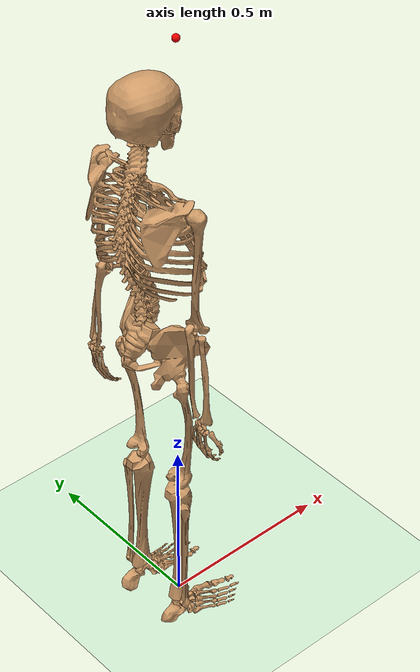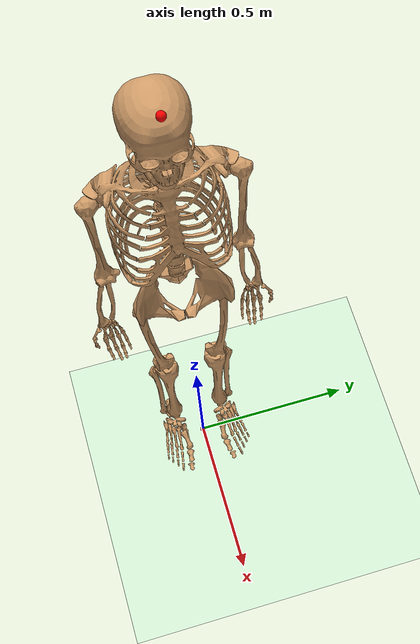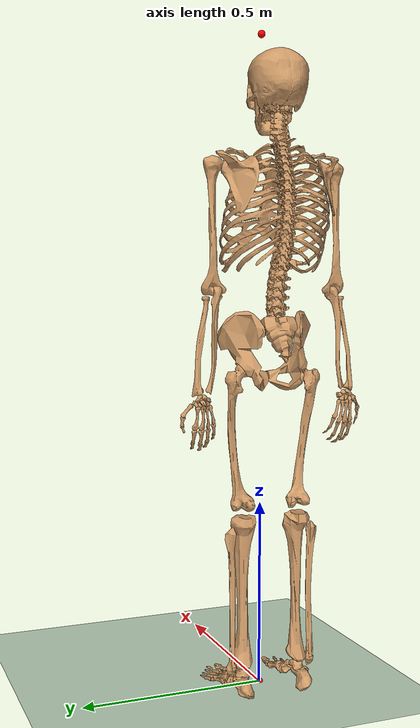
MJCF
<?xml version="1.0" encoding="utf-8"?>
<mujoco model="GZ_DW_sub01">
  <compiler inertiafromgeom="auto" angle="radian"  meshdir="meshes/" balanceinertia="true" boundmass="0.001" boundinertia="0.001" convexhull="false">
    <lengthrange inttotal="50" useexisting="true"></lengthrange>
  </compiler>
  <option timestep="0.001" integrator="RK4" iterations="50"/>
  <size njmax="1000" nconmax="400" nuser_jnt="1"/>
  <visual>
    <global offwidth="1920" offheight="1080"/>
    <scale connect="0.025000000000000001" jointwidth="0.025000000000000001" framewidth="0.025000000000000001"/>
  </visual>
  <default>
    <default class="/">
      <joint limited="true" stiffness="1" armature="0.01" damping="1"/>
      <geom condim="3" group="0" rgba="0.80000000000000004 0.59999999999999998 0.40000000000000002 1" margin="0.001"/>
      <site size="0.001"/>
      <tendon limited="false" width="0.001" rgba="0.94999999999999996 0.29999999999999999 0.29999999999999999 1"/>
      <motor ctrllimited="true" ctrlrange="-1 1"/>
    </default>
  </default>
  <asset>
    <mesh name="sacrum" class="/" file="sacrum.stl" scale="0.97641393442622948 0.97641393442622948 0.97641393442622948"/>
    <mesh name="pelvis" class="/" file="pelvis.stl" scale="0.97641393442622948 0.97641393442622948 0.97641393442622948"/>
    <mesh name="l_pelvis" class="/" file="l_pelvis.stl" scale="0.97641393442622948 0.97641393442622948 0.97641393442622948"/>
    <mesh name="femur_r" class="/" file="femur_r.stl" scale="0.86917336065573769 0.86917336065573769 0.86917336065573769"/>
    <mesh name="tibia_r" class="/" file="tibia_r.stl" scale="1.0678633879781418 1.0678633879781418 1.0678633879781418"/>
    <mesh name="fibula_r" class="/" file="fibula_r.stl" scale="1.0678633879781418 1.0678633879781418 1.0678633879781418"/>
    <mesh name="talus_rv" class="/" file="talus_rv.stl" scale="1.0678633879781418 1.0678633879781418 1.0678633879781418"/>
    <mesh name="foot" class="/" file="foot.stl" scale="1.0189398907103824 1.0189398907103824 1.0189398907103824"/>
    <mesh name="bofoot" class="/" file="bofoot.stl" scale="1.0189398907103824 1.0189398907103824 1.0189398907103824"/>
    <mesh name="femur_l" class="/" file="femur_l.stl" scale="0.86917336065573769 0.86917336065573769 0.86917336065573769"/>
    <mesh name="tibia_l" class="/" file="tibia_l.stl" scale="1.0678633879781418 1.0678633879781418 1.0678633879781418"/>
    <mesh name="fibula_l" class="/" file="fibula_l.stl" scale="1.0678633879781418 1.0678633879781418 1.0678633879781418"/>
    <mesh name="talus_lv" class="/" file="talus_lv.stl" scale="1.0678633879781418 1.0678633879781418 1.0678633879781418"/>
    <mesh name="l_foot" class="/" file="l_foot.stl" scale="1.0189398907103824 1.0189398907103824 1.0189398907103824"/>
    <mesh name="l_bofoot" class="/" file="l_bofoot.stl" scale="1.0189398907103824 1.0189398907103824 1.0189398907103824"/>
    <mesh name="hat_spine" class="/" file="hat_spine.stl" scale="1.0302622950819673 1.0302622950819673 1.0302622950819673"/>
    <mesh name="hat_jaw" class="/" file="hat_jaw.stl" scale="1.0773600000000001 1.0773600000000001 1.0773600000000001"/>
    <mesh name="hat_skull" class="/" file="hat_skull.stl" scale="1.0773600000000001 1.0773600000000001 1.0773600000000001"/>
    <mesh name="hat_ribs_scap" class="/" file="hat_ribs_scap.stl" scale="1.0302622950819673 1.0302622950819673 1.0302622950819673"/>
    <mesh name="humerus_rv" class="/" file="humerus_rv.stl" scale="1.1234139344262295 1.1234139344262295 1.1234139344262295"/>
    <mesh name="ulna_rv" class="/" file="ulna_rv.stl" scale="1.0598210382513662 1.0598210382513662 1.0598210382513662"/>
    <mesh name="radius_rv" class="/" file="radius_rv.stl" scale="1.0598210382513662 1.0598210382513662 1.0598210382513662"/>
    <mesh name="pisiform_rvs" class="/" file="pisiform_rvs.stl" scale="0.86609795081967211 0.86609795081967211 0.86609795081967211"/>
    <mesh name="lunate_rvs" class="/" file="lunate_rvs.stl" scale="0.86609795081967211 0.86609795081967211 0.86609795081967211"/>
    <mesh name="scaphoid_rvs" class="/" file="scaphoid_rvs.stl" scale="0.86609795081967211 0.86609795081967211 0.86609795081967211"/>
    <mesh name="triquetrum_rvs" class="/" file="triquetrum_rvs.stl" scale="0.86609795081967211 0.86609795081967211 0.86609795081967211"/>
    <mesh name="hamate_rvs" class="/" file="hamate_rvs.stl" scale="0.86609795081967211 0.86609795081967211 0.86609795081967211"/>
    <mesh name="capitate_rvs" class="/" file="capitate_rvs.stl" scale="0.86609795081967211 0.86609795081967211 0.86609795081967211"/>
    <mesh name="trapezoid_rvs" class="/" file="trapezoid_rvs.stl" scale="0.86609795081967211 0.86609795081967211 0.86609795081967211"/>
    <mesh name="trapezium_rvs" class="/" file="trapezium_rvs.stl" scale="0.86609795081967211 0.86609795081967211 0.86609795081967211"/>
    <mesh name="metacarpal2_rvs" class="/" file="metacarpal2_rvs.stl" scale="0.86609795081967211 0.86609795081967211 0.86609795081967211"/>
    <mesh name="index_proximal_rvs" class="/" file="index_proximal_rvs.stl" scale="0.86609795081967211 0.86609795081967211 0.86609795081967211"/>
    <mesh name="index_medial_rvs" class="/" file="index_medial_rvs.stl" scale="0.86609795081967211 0.86609795081967211 0.86609795081967211"/>
    <mesh name="index_distal_rvs" class="/" file="index_distal_rvs.stl" scale="0.86609795081967211 0.86609795081967211 0.86609795081967211"/>
    <mesh name="metacarpal3_rvs" class="/" file="metacarpal3_rvs.stl" scale="0.86609795081967211 0.86609795081967211 0.86609795081967211"/>
    <mesh name="middle_proximal_rvs" class="/" file="middle_proximal_rvs.stl" scale="0.86609795081967211 0.86609795081967211 0.86609795081967211"/>
    <mesh name="middle_medial_rvs" class="/" file="middle_medial_rvs.stl" scale="0.86609795081967211 0.86609795081967211 0.86609795081967211"/>
    <mesh name="middle_distal_rvs" class="/" file="middle_distal_rvs.stl" scale="0.86609795081967211 0.86609795081967211 0.86609795081967211"/>
    <mesh name="metacarpal4_rvs" class="/" file="metacarpal4_rvs.stl" scale="0.86609795081967211 0.86609795081967211 0.86609795081967211"/>
    <mesh name="ring_proximal_rvs" class="/" file="ring_proximal_rvs.stl" scale="0.86609795081967211 0.86609795081967211 0.86609795081967211"/>
    <mesh name="ring_medial_rvs" class="/" file="ring_medial_rvs.stl" scale="0.86609795081967211 0.86609795081967211 0.86609795081967211"/>
    <mesh name="ring_distal_rvs" class="/" file="ring_distal_rvs.stl" scale="0.86609795081967211 0.86609795081967211 0.86609795081967211"/>
    <mesh name="metacarpal5_rvs" class="/" file="metacarpal5_rvs.stl" scale="0.86609795081967211 0.86609795081967211 0.86609795081967211"/>
    <mesh name="little_proximal_rvs" class="/" file="little_proximal_rvs.stl" scale="0.86609795081967211 0.86609795081967211 0.86609795081967211"/>
    <mesh name="little_medial_rvs" class="/" file="little_medial_rvs.stl" scale="0.86609795081967211 0.86609795081967211 0.86609795081967211"/>
    <mesh name="little_distal_rvs" class="/" file="little_distal_rvs.stl" scale="0.86609795081967211 0.86609795081967211 0.86609795081967211"/>
    <mesh name="metacarpal1_rvs" class="/" file="metacarpal1_rvs.stl" scale="0.86609795081967211 0.86609795081967211 0.86609795081967211"/>
    <mesh name="thumb_proximal_rvs" class="/" file="thumb_proximal_rvs.stl" scale="0.86609795081967211 0.86609795081967211 0.86609795081967211"/>
    <mesh name="thumb_distal_rvs" class="/" file="thumb_distal_rvs.stl" scale="0.86609795081967211 0.86609795081967211 0.86609795081967211"/>
    <mesh name="humerus_lv" class="/" file="humerus_lv.stl" scale="1.1234139344262295 1.1234139344262295 1.1234139344262295"/>
    <mesh name="ulna_lv" class="/" file="ulna_lv.stl" scale="1.0598210382513662 1.0598210382513662 1.0598210382513662"/>
    <mesh name="radius_lv" class="/" file="radius_lv.stl" scale="1.0598210382513662 1.0598210382513662 1.0598210382513662"/>
    <mesh name="pisiform_lvs" class="/" file="pisiform_lvs.stl" scale="0.86609795081967211 0.86609795081967211 0.86609795081967211"/>
    <mesh name="lunate_lvs" class="/" file="lunate_lvs.stl" scale="0.86609795081967211 0.86609795081967211 0.86609795081967211"/>
    <mesh name="scaphoid_lvs" class="/" file="scaphoid_lvs.stl" scale="0.86609795081967211 0.86609795081967211 0.86609795081967211"/>
    <mesh name="triquetrum_lvs" class="/" file="triquetrum_lvs.stl" scale="0.86609795081967211 0.86609795081967211 0.86609795081967211"/>
    <mesh name="hamate_lvs" class="/" file="hamate_lvs.stl" scale="0.86609795081967211 0.86609795081967211 0.86609795081967211"/>
    <mesh name="capitate_lvs" class="/" file="capitate_lvs.stl" scale="0.86609795081967211 0.86609795081967211 0.86609795081967211"/>
    <mesh name="trapezoid_lvs" class="/" file="trapezoid_lvs.stl" scale="0.86609795081967211 0.86609795081967211 0.86609795081967211"/>
    <mesh name="trapezium_lvs" class="/" file="trapezium_lvs.stl" scale="0.86609795081967211 0.86609795081967211 0.86609795081967211"/>
    <mesh name="metacarpal2_lvs" class="/" file="metacarpal2_lvs.stl" scale="0.86609795081967211 0.86609795081967211 0.86609795081967211"/>
    <mesh name="index_proximal_lvs" class="/" file="index_proximal_lvs.stl" scale="0.86609795081967211 0.86609795081967211 0.86609795081967211"/>
    <mesh name="index_medial_lvs" class="/" file="index_medial_lvs.stl" scale="0.86609795081967211 0.86609795081967211 0.86609795081967211"/>
    <mesh name="index_distal_lvs" class="/" file="index_distal_lvs.stl" scale="0.86609795081967211 0.86609795081967211 0.86609795081967211"/>
    <mesh name="metacarpal3_lvs" class="/" file="metacarpal3_lvs.stl" scale="0.86609795081967211 0.86609795081967211 0.86609795081967211"/>
    <mesh name="middle_proximal_lvs" class="/" file="middle_proximal_lvs.stl" scale="0.86609795081967211 0.86609795081967211 0.86609795081967211"/>
    <mesh name="middle_medial_lvs" class="/" file="middle_medial_lvs.stl" scale="0.86609795081967211 0.86609795081967211 0.86609795081967211"/>
    <mesh name="middle_distal_lvs" class="/" file="middle_distal_lvs.stl" scale="0.86609795081967211 0.86609795081967211 0.86609795081967211"/>
    <mesh name="metacarpal4_lvs" class="/" file="metacarpal4_lvs.stl" scale="0.86609795081967211 0.86609795081967211 0.86609795081967211"/>
    <mesh name="ring_proximal_lvs" class="/" file="ring_proximal_lvs.stl" scale="0.86609795081967211 0.86609795081967211 0.86609795081967211"/>
    <mesh name="ring_medial_lvs" class="/" file="ring_medial_lvs.stl" scale="0.86609795081967211 0.86609795081967211 0.86609795081967211"/>
    <mesh name="ring_distal_lvs" class="/" file="ring_distal_lvs.stl" scale="0.86609795081967211 0.86609795081967211 0.86609795081967211"/>
    <mesh name="metacarpal5_lvs" class="/" file="metacarpal5_lvs.stl" scale="0.86609795081967211 0.86609795081967211 0.86609795081967211"/>
    <mesh name="little_proximal_lvs" class="/" file="little_proximal_lvs.stl" scale="0.86609795081967211 0.86609795081967211 0.86609795081967211"/>
    <mesh name="little_medial_lvs" class="/" file="little_medial_lvs.stl" scale="0.86609795081967211 0.86609795081967211 0.86609795081967211"/>
    <mesh name="little_distal_lvs" class="/" file="little_distal_lvs.stl" scale="0.86609795081967211 0.86609795081967211 0.86609795081967211"/>
    <mesh name="metacarpal1_lvs" class="/" file="metacarpal1_lvs.stl" scale="0.86609795081967211 0.86609795081967211 0.86609795081967211"/>
    <mesh name="thumb_proximal_lvs" class="/" file="thumb_proximal_lvs.stl" scale="0.86609795081967211 0.86609795081967211 0.86609795081967211"/>
    <mesh name="thumb_distal_lvs" class="/" file="thumb_distal_lvs.stl" scale="0.86609795081967211 0.86609795081967211 0.86609795081967211"/>
    <texture name="//unnamed_texture_0" type="skybox" builtin="gradient" rgb1="0.40000000000000002 0.5 0.59999999999999998" rgb2="0 0 0" width="100" height="100"/>
    <texture name="texgeom" type="cube" builtin="flat" rgb1="0.80000000000000004 0.59999999999999998 0.40000000000000002" rgb2="0.80000000000000004 0.59999999999999998 0.40000000000000002" mark="cross" markrgb="1 1 1" random="0.01" width="127" height="1278"/>
    <texture name="texplane" type="2d" builtin="checker" rgb1="0.20000000000000001 0.29999999999999999 0.40000000000000002" rgb2="0.10000000000000001 0.14999999999999999 0.20000000000000001" width="100" height="100"/>
    <material name="MatPlane" class="/" texture="texplane" texrepeat="1 1" texuniform="true" reflectance="0.5"/>
    <material name="geom" class="/" texture="texgeom" texuniform="true"/>
  </asset>
  <worldbody>
    <geom name="ref" type="sphere" size="0.01" pos="0 0 0" rgba="1 0 0 1"/>
    <geom name="tall" type="sphere" size="0.01" pos="0 0 1.75" rgba="1 0 0 1"/>
    <geom name="floor" class="/" type="plane" condim="3" group="2" size="500 500 0.125" material="MatPlane" rgba="0.80000000000000004 0.90000000000000002 0.80000000000000004 1" pos="0 0 0"/>
    <light name="//unnamed_light_0" class="/" directional="true" castshadow="false" pos="0 0 1.3" dir="-0 0 -1.3" cutoff="100" exponent="1" diffuse="1 1 1" specular="0.10000000000000001 0.10000000000000001 0.10000000000000001"/>
    <body name="pelvis" pos="0 6.4411092896174867e-17 0.93237704918032782" quat="0.70710678118654746 0.70710678118654746 0 0">
      <light name="spotlight" class="/" mode="trackcom" pos="0 10 2" dir="0 -1 0"/>
      <geom name="sacrum" class="/" type="mesh" mesh="sacrum"/>
      <geom name="pelvis" class="/" type="mesh" mesh="pelvis"/>
      <geom name="l_pelvis" class="/" type="mesh" mesh="l_pelvis"/>
      <inertial pos="-0.072188199999999994 0 0" mass="11.869610789760127" fullinertia="0.098778295932740554 0.083692487708162414 0.055634995655872904 0 0 0"/>
      <camera name="track_human" class="/" mode="trackcom" pos="0 0 4" xyaxes="1 0 0 0 1 0"/>
      <body name="pelvis_body" pos="-0.069032431693989066 -0.032270478142076495 0">
        <inertial pos="-0.0050000000000000001 0 0" mass="0" fullinertia="1.5774042244832163 0.80822313528878542 1.5312927050690319 0 0 0"/>
      </body>
      <joint name="pelvis_tx" class="/" type="slide" pos="0 0 0" axis="1 0 0" limited="false" stiffness="0" range="-500 500" ref="0" armature="0" damping="0"/>
      <joint name="pelvis_tz" class="/" type="slide" pos="0 0 0" axis="0 0 1" limited="false" stiffness="0" range="-300 300" ref="0" armature="0" damping="0"/>
      <joint name="pelvis_ty" class="/" type="slide" pos="0 0 0" axis="0 1 0" limited="false" stiffness="0" range="-100 200" ref="0" armature="0" damping="0"/>
      <joint name="pelvis_tilt" class="/" type="hinge" pos="0 0 0" axis="0 0 1" limited="false" stiffness="0" range="-1.5708 1.5708" ref="0" armature="0" damping="0"/>
      <joint name="pelvis_list" class="/" type="hinge" pos="0 0 0" axis="1 0 0" limited="false" stiffness="0" range="-1.5708 1.5708" ref="0" armature="0" damping="0"/>
      <joint name="pelvis_rotation" class="/" type="hinge" pos="0 0 0" axis="0 1 0" limited="false" stiffness="0" range="-1.5708 1.5708" ref="0" armature="0" damping="0"/>
      <body name="femur_r" pos="-0.069032431693989066 -0.064540956284152989 0.08153049180327869" quat="1 0 0 0">
        <body name="hip_r" pos="-0.009562841530054645 -0.009562841530054645 0.023907103825136611">
          <inertial pos="-0.0050000000000000001 0 0" mass="0" fullinertia="1.5774042244832163 0.80822313528878542 1.5312927050690319 0 0 0"/>
        </body>
        <geom name="femur_r" class="/" type="mesh" mesh="femur_r"/>
        <inertial pos="0 -0.15451400000000001 0" mass="9.3745434151205824" fullinertia="0.10195236149907592 0.026725248205739207 0.10751037502541276 0 0 0"/>
        <joint name="hip_flexion_r" class="/" type="hinge" pos="0 0 0" axis="0 0 1" limited="true" stiffness="10" range="-0.78700000000000003 0.78700000000000003" ref="0" damping="5"/>
        <joint name="hip_adduction_r" class="/" type="hinge" pos="0 0 0" axis="1 0 0" limited="true" stiffness="10" range="-0.52400000000000002 0.52400000000000002" ref="0" damping="5"/>
        <joint name="hip_rotation_r" class="/" type="hinge" pos="0 0 0" axis="0 1 0" limited="true" stiffness="20" range="-2.0943999999999998 2.0943999999999998" ref="0" damping="5"/>
        <body name="tibia_r" pos="-0.0016008005464480874 -0.34956489071038249 0" quat="1 0 0 0">
          <geom name="tibia_r" class="/" type="mesh" mesh="tibia_r"/>
          <geom name="fibula_r" class="/" type="mesh" mesh="fibula_r"/>
          <inertial pos="0 -0.208485 0" mass="3.7366546661319258" fullinertia="0.057924897228723682 0.0058614490763077677 0.058729409690233741 0 0 0"/>
          <joint name="knee_angle_r" class="/" type="hinge" pos="0 0 0" axis="0 0 1" limited="true" range="-2.0943999999999998 0.17453299999999999" ref="0"/>
          <body name="talus_r" pos="0 -0.45918183060109291 0" quat="1 0 0 0">
            <geom name="talus_rv" class="/" type="mesh" mesh="talus_rv"/>
            <inertial pos="0 0 0" mass="0.10078636995635692" fullinertia="0.0011493012315452833 0.0011493012315452833 0.0011493012315452833 0 0 0"/>
            <joint name="ankle_angle_r" class="/" type="hinge" pos="0 0 0" axis="-0.105014 -0.17402200000000001 0.97912600000000005" limited="true" stiffness="10" range="-1.5708 1.5708" ref="0" damping="1"/>
            <body name="calcn_r" pos="-0.052079808743169392 -0.044796939890710381 0.0084574918032786894" quat="1 0 0 0">
              <geom name="r_foot" class="/" type="mesh" mesh="foot"/>
              <inertial pos="0.10655199999999999 0.031965599999999997 0" mass="1.2598296244544616" fullinertia="0.0014649644112741575 0.0040809654338564974 0.0042902426366920494 0 0 0"/>
              <joint name="subtalar_angle_r" class="/" type="hinge" pos="0 0 0" axis="0.78717999999999999 0.60474700000000003 -0.120949" limited="true" range="-1.5708 1.5708" ref="0" armature="0.01"/>
              <body name="toes_r" pos="0.18218647540983604 -0.0020378797814207647 0.0011004535519125683" quat="1 0 0 0">
                <geom name="r_bofoot" class="/" type="mesh" mesh="bofoot"/>
                <inertial pos="0.036866999999999997 0.0063931099999999996 -0.018646599999999999" mass="0.21830327732546814" fullinertia="0.00010464020084612889 0.00020928040169225777 0.0010464020084612888 0 0 0"/>
                <joint name="mtp_angle_r" class="/" type="hinge" pos="0 0 0" axis="-0.58095399999999997 0 0.81393599999999999" limited="true" range="-1.5708 1.5708" ref="0" armature="0.01"/>
              </body>
            </body>
          </body>
        </body>
      </body>
      <body name="femur_l" pos="-0.069032431693989066 -0.064540956284152989 -0.08153049180327869" quat="1 0 0 0">
        <body name="hip_l" pos="-0.009562841530054645 -0.009562841530054645 -0.023907103825136611">
          <inertial pos="-0.0050000000000000001 0 0" mass="0" fullinertia="1.5774042244832163 0.80822313528878542 1.5312927050690319 0 0 0"/>
        </body>
        <geom name="femur_l" class="/" type="mesh" mesh="femur_l"/>
        <inertial pos="0 -0.15451400000000001 0" mass="9.3745434151205824" fullinertia="0.10195236149907592 0.026725248205739207 0.10751037502541276 0 0 0"/>
        <joint name="hip_flexion_l" class="/" type="hinge" pos="0 0 0" axis="0 0 1" limited="true" stiffness="10" range="-0.78700000000000003 0.78700000000000003" ref="0" damping="5"/>
        <joint name="hip_adduction_l" class="/" type="hinge" pos="0 0 0" axis="-1 0 0" limited="true" stiffness="10" range="-0.52400000000000002 0.52400000000000002" ref="0" damping="5"/>
        <joint name="hip_rotation_l" class="/" type="hinge" pos="0 0 0" axis="0 -1 0" limited="true" stiffness="20" range="-2.0943999999999998 2.0943999999999998" ref="0" damping="5"/>
        <body name="tibia_l" pos="-0.0016008005464480874 -0.34956489071038249 0" quat="1 0 0 0">
          <geom name="tibia_l" class="/" type="mesh" mesh="tibia_l"/>
          <geom name="fibula_l" class="/" type="mesh" mesh="fibula_l"/>
          <inertial pos="0 -0.208485 0" mass="3.7366546661319258" fullinertia="0.057924897228723682 0.0058614490763077677 0.058729409690233741 0 0 0"/>
          <joint name="knee_angle_l" class="/" type="hinge" pos="0 0 0" axis="0 0 1" limited="true" range="-2.0943999999999998 0.17453299999999999" ref="0"/>
          <body name="talus_l" pos="0 -0.45918183060109291 0" quat="1 0 0 0">
            <geom name="talus_lv" class="/" type="mesh" mesh="talus_lv"/>
            <inertial pos="0 0 0" mass="0.10078636995635692" fullinertia="0.0011493012315452833 0.0011493012315452833 0.0011493012315452833 0 0 0"/>
            <joint name="ankle_angle_l" class="/" type="hinge" pos="0 0 0" axis="0.105014 0.17402200000000001 0.97912600000000005" limited="true" stiffness="10" range="-1.0471999999999999 1.0471999999999999" ref="0" damping="1"/>
            <body name="calcn_l" pos="-0.052079808743169392 -0.044796939890710381 -0.0084574918032786894" quat="1 0 0 0">
              <geom name="l_foot" class="/" type="mesh" mesh="l_foot"/>
              <inertial pos="0.10655199999999999 0.031965599999999997 0" mass="1.2598296244544616" fullinertia="0.0014649644112741575 0.0040809654338564974 0.0042902426366920494 0 0 0"/>
              <joint name="subtalar_angle_l" class="/" type="hinge" pos="0 0 0" axis="-0.78717999999999999 -0.60474700000000003 -0.120949" limited="true" range="-1.5708 1.5708" ref="0" armature="0.01"/>
              <body name="toes_l" pos="0.18218647540983604 -0.0020378797814207647 -0.0011004535519125683" quat="1 0 0 0">
                <geom name="l_bofoot" class="/" type="mesh" mesh="l_bofoot"/>
                <inertial pos="0.036866999999999997 0.0063931099999999996 0.018646599999999999" mass="0.21830327732546814" fullinertia="0.00010464020084612889 0.00020928040169225777 0.0010464020084612888 0 0 0"/>
                <joint name="mtp_angle_l" class="/" type="hinge" pos="0 0 0" axis="0.58095399999999997 0 0.81393599999999999" limited="true" range="-1.0471999999999999 1.0471999999999999" ref="0" armature="0.01"/>
              </body>
            </body>
          </body>
        </body>
      </body>
      <body name="torso" pos="-0.098325136612021843 0.079577663934426224 0" quat="1 0 0 0">
        <body name="neck" pos="0 0.44991065573770489 0" quat="1 0 0 0">
          <inertial pos="0 -0 0" mass="0" fullinertia="1.5774042244832163 0.80822313528878542 1.5312927050690319 0 0 0"/>
          <geom name="hat_jaw" class="/" type="mesh" pos="0 -0.47176857923497267 0" mesh="hat_jaw"/>
          <geom name="hat_skull" class="/" type="mesh" pos="0 -0.47176857923497267 0" mesh="hat_skull"/>
          <body name="head" pos="-0.009562841530054645 0.13888975409836066 0">
            <inertial pos="-0.0050000000000000001 0 0" mass="0" fullinertia="1.5774042244832163 0.80822313528878542 1.5312927050690319 0 0 0"/>
          </body>
          <body name="nose" pos="0.088206693989071036 0.11498265027322403 0">
            <inertial pos="-0.0050000000000000001 0 0" mass="0" fullinertia="1.5774042244832163 0.80822313528878542 1.5312927050690319 0 0 0"/>
          </body>
          <joint name="neck_rot_x" class="/" type="hinge" pos="0 0 0" axis="1 0 0" limited="true" stiffness="5" range="-0.27000000000000002 0.27000000000000002" ref="0" armature="0" damping="20"/>
          <joint name="neck_rot_y" class="/" type="hinge" pos="0 0 0" axis="0 1 0" limited="true" stiffness="5" range="-0.7853 0.7853" ref="0" armature="0" damping="20"/>
          <joint name="neck_rot_z" class="/" type="hinge" pos="0 0 0" axis="0 0 1" limited="true" stiffness="5" range="-0.25839000000000001 0.25839000000000001" ref="0" armature="0" damping="20"/>
        </body>
        <geom name="hat_spine" class="/" type="mesh" mesh="hat_spine"/>
        <geom name="hat_ribs_scap" class="/" type="mesh" mesh="hat_ribs_scap"/>
        <body name="sternum" pos="0.088627650273224043 0.2168422131147541 0">
          <inertial pos="0 0 0" mass="0" fullinertia="0.0007997141764513431 0.0007997141764513431 0.0007997141764513431 0 0 0"/>
        </body>
        <body name="collar_l" pos="0.01912568306010929 0.39731502732240437 -0.052595628415300542">
          <inertial pos="0 0 0" mass="0" fullinertia="0.0007997141764513431 0.0007997141764513431 0.0007997141764513431 0 0 0"/>
        </body>
        <body name="collar_r" pos="0.01912568306010929 0.39731502732240437 0.052595628415300542">
          <inertial pos="0 0 0" mass="0" fullinertia="0.0007997141764513431 0.0007997141764513431 0.0007997141764513431 0 0 0"/>
        </body>
        <body name="spine" pos="-0.066939890710382519 0.2168422131147541 0">
          <inertial pos="0 0 0" mass="0" fullinertia="0.0007997141764513431 0.0007997141764513431 0.0007997141764513431 0 0 0"/>
        </body>
        <inertial pos="-0.032320799999999997 0.34475499999999998 0" mass="27.037556322711954" fullinertia="1.5774042244832163 0.80822313528878542 1.5312927050690319 0 0 0"/>
        <joint name="lumbar_extension" class="/" type="hinge" pos="0 0 0" axis="0 0 1" limited="true" stiffness="10" range="-1.5708 0.377" ref="0" damping="5"/>
        <joint name="lumbar_bending" class="/" type="hinge" pos="0 0 0" axis="1 0 0" limited="true" stiffness="10" range="-0.754 0.754" ref="0" damping="5"/>
        <joint name="lumbar_rotation" class="/" type="hinge" pos="0 0 0" axis="0 1 0" limited="true" stiffness="20" range="-0.754 0.754" ref="0" damping="5"/>
        <body name="humerus_r" pos="0.003250476775956284 0.38274221311475409 0.17514439890710382" quat="1 0 0 0">
          <geom name="humerus_rv" class="/" type="mesh" mesh="humerus_rv"/>
          <inertial pos="0 -0.19325200000000001 0" mass="2.0484829693629516" fullinertia="0.015195129152499034 0.0052418385295350317 0.017055984069683665 0 0 0"/>
          <joint name="arm_flex_r" class="/" type="hinge" pos="0 0 0" axis="0 0 1" limited="true" range="-1.5708 1.5708" ref="0"/>
          <joint name="arm_add_r" class="/" type="hinge" pos="0 0 0" axis="1 0 0" limited="true" range="-2.0943999999999998 1.5708" ref="0"/>
          <joint name="arm_rot_r" class="/" type="hinge" pos="0 0 0" axis="0 1 0" limited="true" range="-1.5708 1.5708" ref="0"/>
          <body name="ulna_r" pos="0.014766174863387977 -0.32160314207650276 -0.010779139344262294" quat="1 0 0 0">
            <geom name="ulna_rv" class="/" type="mesh" mesh="ulna_rv"/>
            <inertial pos="0 -0.133575 0" mass="0.61227719748486698" fullinertia="0.0033531615561516593 0.00069961315327075207 0.0036373080001865861 0 0 0"/>
            <joint name="elbow_flex_r" class="/" type="hinge" pos="0 0 0" axis="0.226047 0.022269000000000001 0.97386200000000001" limited="true" stiffness="0" range="-0.29999999999999999 2.6179999999999999" ref="0"/>
            <body name="radius_r" pos="-0.0071294330601092892 -0.013785122950819672 0.027643401639344263" quat="1 0 0 0">
              <geom name="radius_rv" class="/" type="mesh" mesh="radius_rv"/>
              <inertial pos="0 -0.133575 0" mass="0.61227719748486698" fullinertia="0.0033531615561516593 0.00069961315327075207 0.0036373080001865861 0 0 0"/>
              <joint name="pro_sup_r" class="/" type="hinge" pos="0 0 0" axis="0.056397999999999997 0.99840600000000002 0.001952" limited="true" stiffness="0" range="-0.59999999999999998 1.5708" ref="0"/>
              <body name="hand_r" pos="-0.0093232732240437158 -0.24994972677595628 0.014424207650273224" quat="1 0 0 0">
                <geom name="pisiform_rvs" class="/" type="mesh" mesh="pisiform_rvs"/>
                <geom name="lunate_rvs" class="/" type="mesh" mesh="lunate_rvs"/>
                <geom name="scaphoid_rvs" class="/" type="mesh" mesh="scaphoid_rvs"/>
                <geom name="triquetrum_rvs" class="/" type="mesh" mesh="triquetrum_rvs"/>
                <geom name="hamate_rvs" class="/" type="mesh" mesh="hamate_rvs"/>
                <geom name="capitate_rvs" class="/" type="mesh" mesh="capitate_rvs"/>
                <geom name="trapezoid_rvs" class="/" type="mesh" mesh="trapezoid_rvs"/>
                <geom name="trapezium_rvs" class="/" type="mesh" mesh="trapezium_rvs"/>
                <geom name="metacarpal2_rvs" class="/" type="mesh" mesh="metacarpal2_rvs"/>
                <geom name="index_proximal_rvs" class="/" type="mesh" mesh="index_proximal_rvs"/>
                <geom name="index_medial_rvs" class="/" type="mesh" mesh="index_medial_rvs"/>
                <geom name="index_distal_rvs" class="/" type="mesh" mesh="index_distal_rvs"/>
                <geom name="metacarpal3_rvs" class="/" type="mesh" mesh="metacarpal3_rvs"/>
                <geom name="middle_proximal_rvs" class="/" type="mesh" mesh="middle_proximal_rvs"/>
                <geom name="middle_medial_rvs" class="/" type="mesh" mesh="middle_medial_rvs"/>
                <geom name="middle_distal_rvs" class="/" type="mesh" mesh="middle_distal_rvs"/>
                <geom name="metacarpal4_rvs" class="/" type="mesh" mesh="metacarpal4_rvs"/>
                <geom name="ring_proximal_rvs" class="/" type="mesh" mesh="ring_proximal_rvs"/>
                <geom name="ring_medial_rvs" class="/" type="mesh" mesh="ring_medial_rvs"/>
                <geom name="ring_distal_rvs" class="/" type="mesh" mesh="ring_distal_rvs"/>
                <geom name="metacarpal5_rvs" class="/" type="mesh" mesh="metacarpal5_rvs"/>
                <geom name="little_proximal_rvs" class="/" type="mesh" mesh="little_proximal_rvs"/>
                <geom name="little_medial_rvs" class="/" type="mesh" mesh="little_medial_rvs"/>
                <geom name="little_distal_rvs" class="/" type="mesh" mesh="little_distal_rvs"/>
                <geom name="metacarpal1_rvs" class="/" type="mesh" mesh="metacarpal1_rvs"/>
                <geom name="thumb_proximal_rvs" class="/" type="mesh" mesh="thumb_proximal_rvs"/>
                <geom name="thumb_distal_rvs" class="/" type="mesh" mesh="thumb_distal_rvs"/>
                <body name="thumb_distal_r" pos="0.018647540983606558 -0.090846994535519116 0.043032786885245901">
                  <inertial pos="0 0 0" mass="0" fullinertia="0.0007997141764513431 0.0007997141764513431 0.0007997141764513431 0 0 0"/>
                </body>
                <body name="little_distal_r" pos="0.035860655737704916 -0.11953551912568305 -0.044945355191256829">
                  <inertial pos="0 0 0" mass="0" fullinertia="0.0007997141764513431 0.0007997141764513431 0.0007997141764513431 0 0 0"/>
                </body>
                <inertial pos="0 -0.072556499999999996 0" mass="0.46109764255033159" fullinertia="0.00093338640104518515 0.0005723810269398727 0.0014021788512809626 0 0 0"/>
                <joint name="wrist_flex_r" class="/" type="hinge" pos="0 0 0" axis="0 0 1" limited="true" stiffness="0" range="-1.22173 1.22173" ref="0"/>
                <joint name="wrist_dev_r" class="/" type="hinge" pos="0 0 0" axis="1 0 0" limited="true" stiffness="0" range="-0.436332 0.61086499999999999" ref="0"/>
              </body>
            </body>
          </body>
        </body>
        <body name="humerus_l" pos="0.003250476775956284 0.38274221311475409 -0.17514439890710382" quat="1 0 0 0">
          <geom name="humerus_lv" class="/" type="mesh" mesh="humerus_lv"/>
          <inertial pos="0 -0.19325200000000001 0" mass="2.0484829693629516" fullinertia="0.015195129152499034 0.0052418385295350317 0.017055984069683665 0 0 0"/>
          <joint name="arm_flex_l" class="/" type="hinge" pos="0 0 0" axis="0 0 1" limited="true" range="-1.5708 1.5708" ref="0"/>
          <joint name="arm_add_l" class="/" type="hinge" pos="0 0 0" axis="-1 0 0" limited="true" range="-2.0943999999999998 1.5708" ref="0"/>
          <joint name="arm_rot_l" class="/" type="hinge" pos="0 0 0" axis="0 -1 0" limited="true" range="-1.5708 1.5708" ref="0"/>
          <body name="ulna_l" pos="0.014766174863387977 -0.32160314207650276 0.010779139344262294" quat="1 0 0 0">
            <geom name="ulna_lv" class="/" type="mesh" mesh="ulna_lv"/>
            <inertial pos="0 -0.133575 0" mass="0.61227719748486698" fullinertia="0.0033531615561516593 0.00069961315327075207 0.0036373080001865861 0 0 0"/>
            <joint name="elbow_flex_l" class="/" type="hinge" pos="0 0 0" axis="-0.226047 -0.022269000000000001 0.97386200000000001" limited="true" stiffness="0" range="-0.29999999999999999 2.6179999999999999" ref="0"/>
            <body name="radius_l" pos="-0.0071294330601092892 -0.013785122950819672 -0.027643401639344263" quat="1 0 0 0">
              <geom name="radius_lv" class="/" type="mesh" mesh="radius_lv"/>
              <inertial pos="0 -0.133575 0" mass="0.61227719748486698" fullinertia="0.0033531615561516593 0.00069961315327075207 0.0036373080001865861 0 0 0"/>
              <joint name="pro_sup_l" class="/" type="hinge" pos="0 0 0" axis="-0.056397999999999997 -0.99840600000000002 0.001952" limited="true" stiffness="0" range="-0.59999999999999998 1.5708" ref="0"/>
              <body name="hand_l" pos="-0.0093232732240437158 -0.24994972677595628 -0.014424207650273224" quat="1 0 0 0">
                <geom name="pisiform_lvs" class="/" type="mesh" mesh="pisiform_lvs"/>
                <geom name="lunate_lvs" class="/" type="mesh" mesh="lunate_lvs"/>
                <geom name="scaphoid_lvs" class="/" type="mesh" mesh="scaphoid_lvs"/>
                <geom name="triquetrum_lvs" class="/" type="mesh" mesh="triquetrum_lvs"/>
                <geom name="hamate_lvs" class="/" type="mesh" mesh="hamate_lvs"/>
                <geom name="capitate_lvs" class="/" type="mesh" mesh="capitate_lvs"/>
                <geom name="trapezoid_lvs" class="/" type="mesh" mesh="trapezoid_lvs"/>
                <geom name="trapezium_lvs" class="/" type="mesh" mesh="trapezium_lvs"/>
                <geom name="metacarpal2_lvs" class="/" type="mesh" mesh="metacarpal2_lvs"/>
                <geom name="index_proximal_lvs" class="/" type="mesh" mesh="index_proximal_lvs"/>
                <geom name="index_medial_lvs" class="/" type="mesh" mesh="index_medial_lvs"/>
                <geom name="index_distal_lvs" class="/" type="mesh" mesh="index_distal_lvs"/>
                <geom name="metacarpal3_lvs" class="/" type="mesh" mesh="metacarpal3_lvs"/>
                <geom name="middle_proximal_lvs" class="/" type="mesh" mesh="middle_proximal_lvs"/>
                <geom name="middle_medial_lvs" class="/" type="mesh" mesh="middle_medial_lvs"/>
                <geom name="middle_distal_lvs" class="/" type="mesh" mesh="middle_distal_lvs"/>
                <geom name="metacarpal4_lvs" class="/" type="mesh" mesh="metacarpal4_lvs"/>
                <geom name="ring_proximal_lvs" class="/" type="mesh" mesh="ring_proximal_lvs"/>
                <geom name="ring_medial_lvs" class="/" type="mesh" mesh="ring_medial_lvs"/>
                <geom name="ring_distal_lvs" class="/" type="mesh" mesh="ring_distal_lvs"/>
                <geom name="metacarpal5_lvs" class="/" type="mesh" mesh="metacarpal5_lvs"/>
                <geom name="little_proximal_lvs" class="/" type="mesh" mesh="little_proximal_lvs"/>
                <geom name="little_medial_lvs" class="/" type="mesh" mesh="little_medial_lvs"/>
                <geom name="little_distal_lvs" class="/" type="mesh" mesh="little_distal_lvs"/>
                <geom name="metacarpal1_lvs" class="/" type="mesh" mesh="metacarpal1_lvs"/>
                <geom name="thumb_proximal_lvs" class="/" type="mesh" mesh="thumb_proximal_lvs"/>
                <geom name="thumb_distal_lvs" class="/" type="mesh" mesh="thumb_distal_lvs"/>
                <body name="thumb_distal_l" pos="0.018647540983606558 -0.090846994535519116 -0.043032786885245901">
                  <inertial pos="0 0 0" mass="0" fullinertia="0.0007997141764513431 0.0007997141764513431 0.0007997141764513431 0 0 0"/>
                </body>
                <body name="little_distal_l" pos="0.035860655737704916 -0.11953551912568305 0.044945355191256829">
                  <inertial pos="0 0 0" mass="0" fullinertia="0.0007997141764513431 0.0007997141764513431 0.0007997141764513431 0 0 0"/>
                </body>
                <inertial pos="0 -0.072556499999999996 0" mass="0.46109764255033159" fullinertia="0.00093338640104518515 0.0005723810269398727 0.0014021788512809626 0 0 0"/>
                <joint name="wrist_flex_l" class="/" type="hinge" pos="0 0 0" axis="0 0 1" limited="true" stiffness="0" range="-1.22173 1.22173" ref="0"/>
                <joint name="wrist_dev_l" class="/" type="hinge" pos="0 0 0" axis="-1 0 0" limited="true" stiffness="0" range="-0.436332 0.61086499999999999" ref="0"/>
              </body>
            </body>
          </body>
        </body>
      </body>
    </body>
  </worldbody>
  <equality>
    <joint name="subtalar_angle_r_constraint" class="/" active="true" joint1="subtalar_angle_r" polycoef="0 0 0 0 0"/>
    <joint name="mtp_angle_r_constraint" class="/" active="true" joint1="mtp_angle_r" polycoef="0 0 0 0 0"/>
    <joint name="subtalar_angle_l_constraint" class="/" active="true" joint1="subtalar_angle_l" polycoef="0 0 0 0 0"/>
    <joint name="mtp_angle_l_constraint" class="/" active="true" joint1="mtp_angle_l" polycoef="0 0 0 0 0"/>
    <joint name="wrist_flex_r_constraint" class="/" active="true" joint1="wrist_flex_r" polycoef="0 0 0 0 0"/>
    <joint name="wrist_dev_r_constraint" class="/" active="true" joint1="wrist_dev_r" polycoef="0 0 0 0 0"/>
    <joint name="wrist_flex_l_constraint" class="/" active="true" joint1="wrist_flex_l" polycoef="0 0 0 0 0"/>
    <joint name="wrist_dev_l_constraint" class="/" active="true" joint1="wrist_dev_l" polycoef="0 0 0 0 0"/>
    <weld name="origin_to_worldbody" class="/" active="false" body1="pelvis"/>
  </equality>
  <actuator>
    <motor name="mot_lumbar_ext" class="/" gear="146.31670100630058" joint="lumbar_extension"/>
    <motor name="mot_lumbar_bend" class="/" gear="146.31670100630058" joint="lumbar_bending"/>
    <motor name="mot_lumbar_rot" class="/" gear="91.447938128937849" joint="lumbar_rotation"/>
    <motor name="mot_shoulder_flex_r" class="/" gear="228.61984532234464" joint="arm_flex_r"/>
    <motor name="mot_shoulder_add_r" class="/" gear="228.61984532234464" joint="arm_add_r"/>
    <motor name="mot_shoulder_rot_r" class="/" gear="228.61984532234464" joint="arm_rot_r"/>
    <motor name="mot_elbow_flex_r" class="/" gear="228.61984532234464" joint="elbow_flex_r"/>
    <motor name="mot_pro_sup_r" class="/" gear="228.61984532234464" joint="pro_sup_r"/>
    <motor name="mot_wrist_flex_r" class="/" gear="45.723969064468925" joint="wrist_flex_r"/>
    <motor name="mot_wrist_dev_r" class="/" gear="45.723969064468925" joint="wrist_dev_r"/>
    <motor name="mot_shoulder_flex_l" class="/" gear="228.61984532234464" joint="arm_flex_l"/>
    <motor name="mot_shoulder_add_l" class="/" gear="228.61984532234464" joint="arm_add_l"/>
    <motor name="mot_shoulder_rot_l" class="/" gear="228.61984532234464" joint="arm_rot_l"/>
    <motor name="mot_elbow_flex_l" class="/" gear="228.61984532234464" joint="elbow_flex_l"/>
    <motor name="mot_pro_sup_l" class="/" gear="228.61984532234464" joint="pro_sup_l"/>
    <motor name="mot_wrist_flex_l" class="/" gear="45.723969064468925" joint="wrist_flex_l"/>
    <motor name="mot_wrist_dev_l" class="/" gear="45.723969064468925" joint="wrist_dev_l"/>
    <motor name="mot_hip_flexion_r" class="/" gear="251.4818298545791" joint="hip_flexion_r"/>
    <motor name="mot_hip_adduction_r" class="/" gear="484.67407208337062" joint="hip_adduction_r"/>
    <motor name="mot_hip_rotation_r" class="/" gear="548.68762877362713" joint="hip_rotation_r"/>
    <motor name="mot_knee_angle_r" class="/" gear="548.68762877362713" joint="knee_angle_r"/>
    <motor name="mot_ankle_angle_r" class="/" gear="457.23969064468929" joint="ankle_angle_r"/>
    <motor name="mot_subtalar_angle_r" class="/" gear="45.723969064468925" joint="subtalar_angle_r"/>
    <motor name="mot_mtp_angle_r" class="/" gear="45.723969064468925" joint="mtp_angle_r"/>
    <motor name="mot_hip_flexion_l" class="/" gear="251.4818298545791" joint="hip_flexion_l"/>
    <motor name="mot_hip_adduction_l" class="/" gear="484.67407208337062" joint="hip_adduction_l"/>
    <motor name="mot_hip_rotation_l" class="/" gear="548.68762877362713" joint="hip_rotation_l"/>
    <motor name="mot_knee_angle_l" class="/" gear="548.68762877362713" joint="knee_angle_l"/>
    <motor name="mot_ankle_angle_l" class="/" gear="457.23969064468929" joint="ankle_angle_l"/>
    <motor name="mot_subtalar_angle_l" class="/" gear="45.723969064468925" joint="subtalar_angle_l"/>
    <motor name="mot_mtp_angle_l" class="/" gear="45.723969064468925" joint="mtp_angle_l"/>
  </actuator>
</mujoco>
